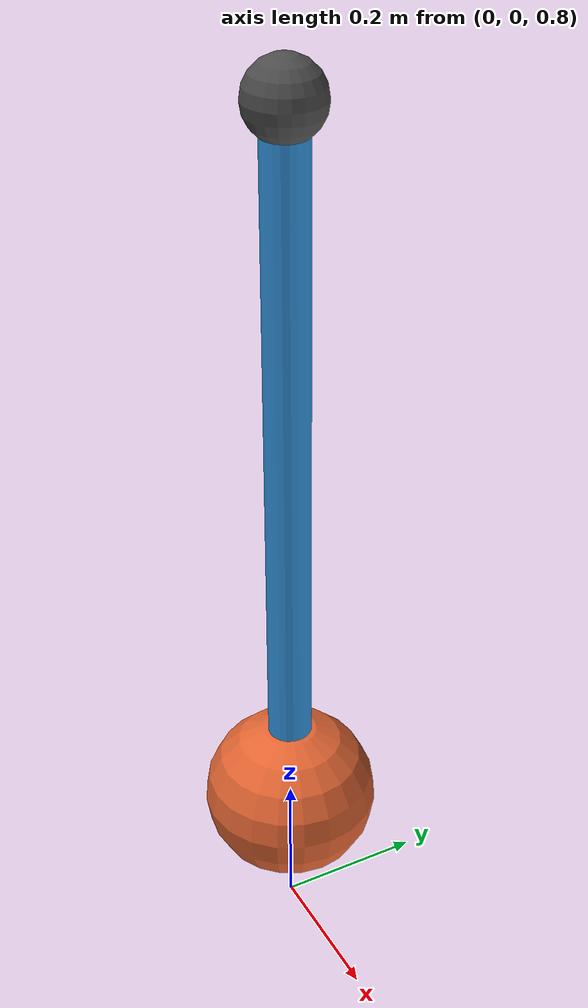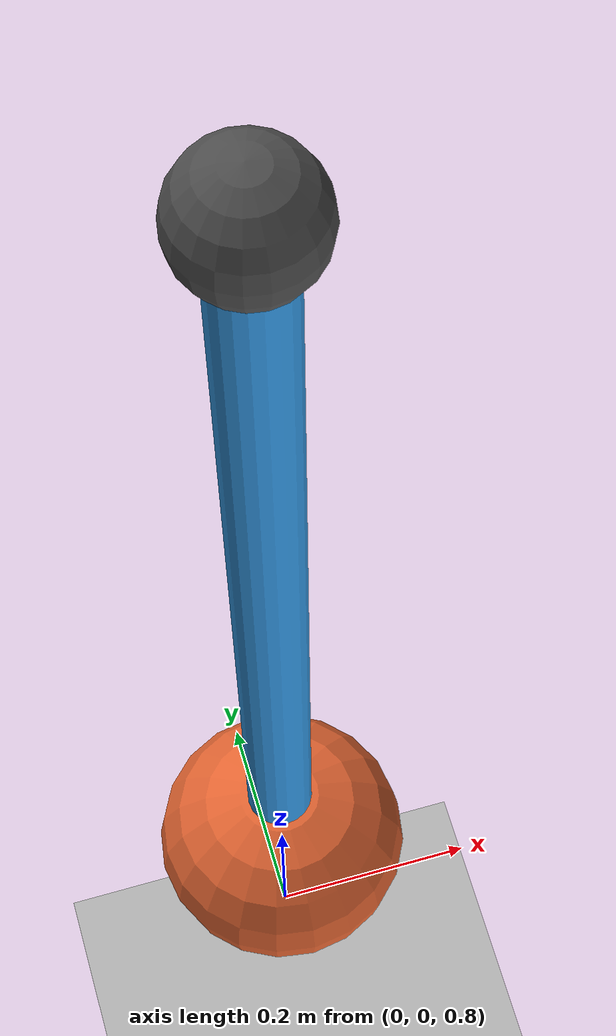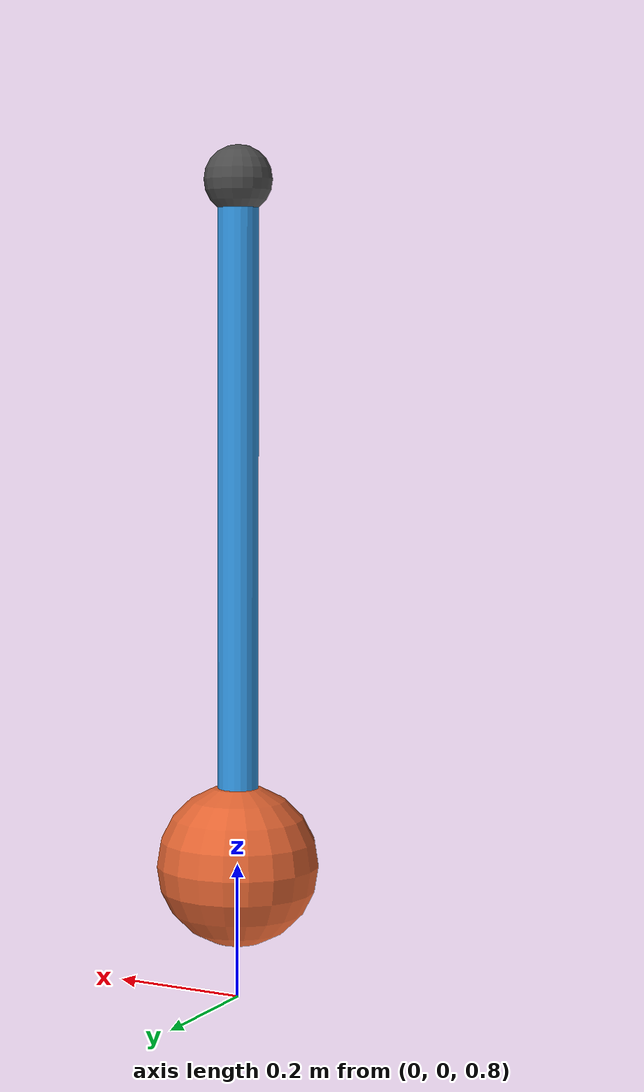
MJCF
<mujoco model="pendulum">
  <!-- Simple pendulum model -->
  <compiler angle="radian" inertiafromgeom="true"/>

  <option timestep="0.01" integrator="RK4" gravity="0 0 -9.81"/>

  <default>
    <joint damping="0.01"/>
    <geom contype="0" rgba="0.7 0.7 0.7 1"/>
  </default>

  <asset>
    <texture name="grid" type="2d" builtin="checker" width="512" height="512" rgb1="0.1 0.2 0.3" rgb2="0.2 0.3 0.4"/>
    <material name="grid" texture="grid" texrepeat="8 8" reflectance="0.2"/>
  </asset>

  <worldbody>
    <!-- Ground -->
    <geom name="floor" type="plane" pos="0 0 0" size="10 10 0.1" material="grid"/>
    <light pos="0 0 3" dir="0 0 -1" diffuse="0.8 0.8 0.8"/>

    <!-- Fixed anchor point -->
    <body name="anchor" pos="0 0 2">
      <geom name="anchor_geom" type="sphere" size="0.05" rgba="0.3 0.3 0.3 1"/>

      <!-- Pendulum arm -->
      <body name="pole" pos="0 0 0">
        <joint name="hinge" type="hinge" axis="0 1 0" limited="false"/>
        <geom name="rod" type="capsule" fromto="0 0 0 0 0 -1" size="0.03" rgba="0.2 0.6 0.9 1" mass="0.5"/>

        <!-- Pendulum bob -->
        <body name="bob" pos="0 0 -1">
          <geom name="bob_geom" type="sphere" size="0.12" rgba="0.9 0.4 0.2 1" mass="1"/>
        </body>
      </body>
    </body>
  </worldbody>

  <actuator>
    <motor name="torque" joint="hinge" gear="10" ctrllimited="true" ctrlrange="-5 5"/>
  </actuator>

  <sensor>
    <jointpos name="angle" joint="hinge"/>
    <jointvel name="angular_velocity" joint="hinge"/>
  </sensor>
</mujoco>
